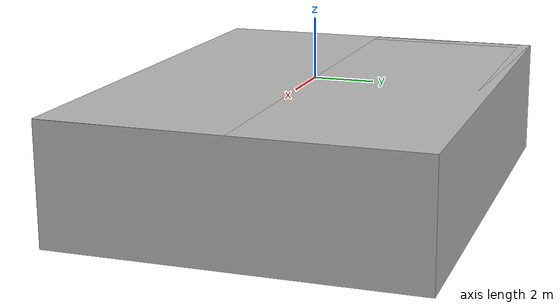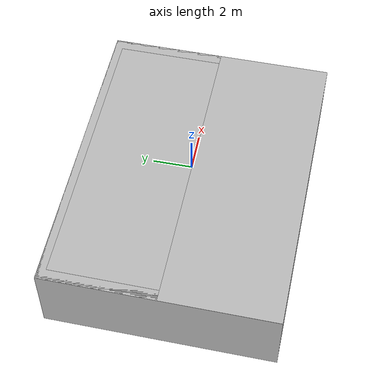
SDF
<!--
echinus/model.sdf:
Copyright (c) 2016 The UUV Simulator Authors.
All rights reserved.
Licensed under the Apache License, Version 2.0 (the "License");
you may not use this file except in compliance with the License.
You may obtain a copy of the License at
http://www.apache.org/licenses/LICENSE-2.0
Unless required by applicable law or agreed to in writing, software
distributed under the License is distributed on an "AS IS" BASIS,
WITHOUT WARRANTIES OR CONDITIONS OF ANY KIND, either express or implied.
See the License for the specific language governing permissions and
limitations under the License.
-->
<?xml version="1.0" ?>
<sdf version="1.5">
  <world name="example_underwater">
    <physics name="default_physics" default="true" type="ode">
      <max_step_size>0.002</max_step_size>
      <real_time_factor>1</real_time_factor>
      <real_time_update_rate>500</real_time_update_rate>
      <ode>
        <solver>
          <type>quick</type>
          <iters>50</iters>
          <sor>0.5</sor>
        </solver>
      </ode>
    </physics>
    <scene>
      <ambient>1.0 1.0 1.0 1.0</ambient>
      <shadows>1</shadows>
      <fog>
        <color>0.0 0.8 0.5 1.0</color>
        <type>linear</type>
        <density>10</density>
        <start>0</start>
        <end>7</end>
      </fog>
    </scene>

    <!-- Global light source -->
    <include>
      <uri>model://sun</uri>
    </include>

    <include>
      <uri>model://pool</uri>
      <pose>0 0 0 0 0 0</pose>
    </include>

     <include>
      <uri>model://echinus</uri>
      <name>echinus</name>
      <pose> 0 -3 -3.5 0 0 0</pose>
    </include>

    <plugin name="underwater_current_plugin" filename="libuuv_underwater_current_ros_plugin.so">
      <namespace>hydrodynamics</namespace>
      <constant_current>
        <topic>current_velocity</topic>
        <velocity>
          <mean>0</mean>
          <min>0</min>
          <max>5</max>
          <mu>0.0</mu>
          <noiseAmp>0.0</noiseAmp>
        </velocity>

        <horizontal_angle>
          <mean>0</mean>
          <min>-3.141592653589793238</min>
          <max>3.141592653589793238</max>
          <mu>0.0</mu>
          <noiseAmp>0.0</noiseAmp>
        </horizontal_angle>

        <vertical_angle>
          <mean>0</mean>
          <min>-3.141592653589793238</min>
          <max>3.141592653589793238</max>
          <mu>0.0</mu>
          <noiseAmp>0.0</noiseAmp>
        </vertical_angle>
      </constant_current>
    </plugin>

    <plugin name="sc_interface" filename="libuuv_sc_ros_interface_plugin.so"/>

  </world>
</sdf>

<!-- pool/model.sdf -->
<sdf version="1.5">
<model name="pool">
  <static>true</static>
  <link name="pool_link">

  <visual name="ocean_surface">
    <pose>0 0 0 0 0 0</pose>
    <cast_shadows>false</cast_shadows>
    <geometry>
      <mesh>
        <uri>file://Media/models/sea_surface_16m_x_12m.dae</uri>
        <scale>1 1 1</scale>
      </mesh>
    </geometry>
    <material>
      <script>
        <uri>file://Media/materials/scripts/waves.material</uri>
        <name>UUVSimulator/SimpleWaves</name>
      </script>
    </material>
  </visual>

  <visual name="ocean_below">
    <pose>0 0 0 3.14 0 0</pose>
    <cast_shadows>false</cast_shadows>
    <geometry>
      <mesh>
        <uri>file://Media/models/sea_surface_16m_x_12m.dae</uri>
        <scale>1 1 1</scale>
      </mesh>
    </geometry>
    <material>
      <script>
        <uri>file://Media/materials/scripts/water.material</uri>
        <name>UUVSimulator/StaticWater</name>
      </script>
    </material>
  </visual>

    <visual name="floor">
        <pose>0 0 0 0 0 0</pose>

        <geometry>
          <mesh><uri>model://pool/meshes/pool.dae</uri><scale>1 1 1</scale></mesh>
        </geometry>

        <material>
          <script>
              <uri>file://Media/materials/scripts/swimming_pool.material</uri>
              <name>DutUUV/SwimmingPool</name>
          </script>
        </material>
    </visual>

    <collision name="floor">
        <pose>0 0 0 0 0 0</pose>
        <geometry>
          <mesh><uri>model://pool/meshes/pool.stl</uri><scale>1 1 1</scale></mesh>
        </geometry>
    </collision>

  </link>
</model>
</sdf>

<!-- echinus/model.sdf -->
<sdf version="1.5">
  <model name="echinus">
    <pose>0 0 0 0 0 0</pose>

    <link name="base">
      <inertial>
        <mass>0.5</mass>
        <inertia>
          <ixx>1</ixx>
          <iyy>100</iyy>
          <izz>1</izz>
          <ixy>0</ixy>
          <ixz>0</ixz>
          <iyz>0</iyz>
        </inertia>
      </inertial>

      <collision name="base_collision">
        <geometry>
          <mesh>
            <uri>model://echinus/meshes/box_555.stl</uri>
          </mesh>
        </geometry>
      </collision>

      <visual name="base_visual">
        <geometry>
          <mesh>
            <uri>model://echinus/meshes/echinus.dae</uri>
          </mesh>
        </geometry>
      </visual>

      <self_collide>0</self_collide>
    </link>

  </model>
</sdf>
